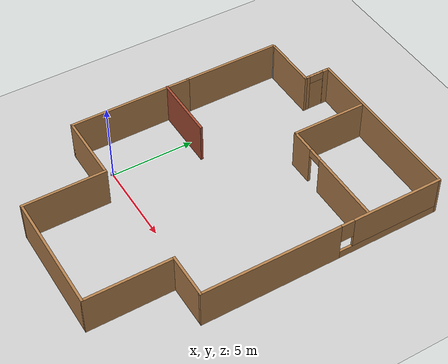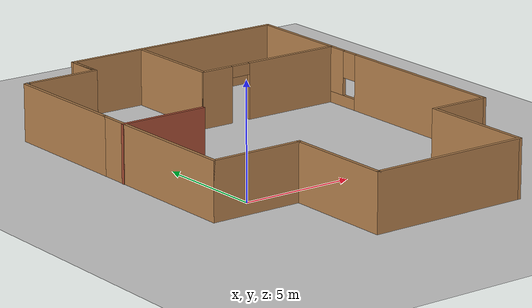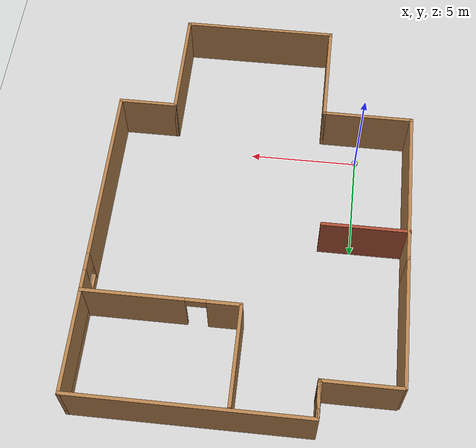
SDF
<sdf version="1.7">
 <world name="lidar_test_world">
  <model name="ground_plane">
   <static>1</static>
   <link name="link">
    <collision name="collision">
     <geometry><plane><normal>0 0 1</normal><size>100 100</size></plane></geometry>
     <surface>
      <contact><collide_bitmask>65535</collide_bitmask></contact>
      <friction><ode><mu>100</mu><mu2>50</mu2></ode></friction>
     </surface>
    </collision>
    <visual name="visual">
     <cast_shadows>0</cast_shadows>
     <geometry><plane><normal>0 0 1</normal><size>100 100</size></plane></geometry>
     <material>
      <script><uri>file://media/materials/scripts/gazebo.material</uri><name>Gazebo/Grey</name></script>
     </material>
    </visual>
   </link>
  </model>
  <light name="sun" type="directional">
   <pose>0 0 10 0 -0 0</pose>
   <diffuse>0.8 0.8 0.8 1</diffuse>
   <specular>0.2 0.2 0.2 1</specular>
   <attenuation>
    <range>1000</range>
    <constant>0.9</constant>
    <linear>0.01</linear>
    <quadratic>0.001</quadratic>
   </attenuation>
   <direction>-0.5 0.1 -0.9</direction>
   <spot><inner_angle>0</inner_angle><outer_angle>0</outer_angle><falloff>0</falloff></spot>
  </light>
  <gravity>0 0 -9.8</gravity>
  <magnetic_field>6e-06 2.3e-05 -4.2e-05</magnetic_field>
  <atmosphere type="adiabatic"/>
  <physics type="ode">
   <max_step_size>0.001</max_step_size>
   <real_time_factor>1</real_time_factor>
   <real_time_update_rate>1000</real_time_update_rate>
  </physics>
  <scene><ambient>0.4 0.4 0.4 1</ambient><background>0.7 0.7 0.7 1</background><shadows>1</shadows></scene>
  <audio><device>default</device></audio>
  <spherical_coordinates>
   <surface_model>EARTH_WGS84</surface_model>
   <latitude_deg>0</latitude_deg>
   <longitude_deg>0</longitude_deg>
   <elevation>0</elevation>
   <heading_deg>0</heading_deg>
  </spherical_coordinates>
  <model name="amr">
   <link name="base_footprint">
    <inertial>
     <pose>0.003077 0 0.002923 0 -0 0</pose>
     <mass>6.5</mass>
     <inertia>
      <ixx>0.0326982</ixx>
      <ixy>0.001</ixy>
      <ixz>0.00105846</ixz>
      <iyy>0.0346367</iyy>
      <iyz>0.001</iyz>
      <izz>0.0531385</izz>
     </inertia>
    </inertial>
    <collision name="base_footprint_fixed_joint_lump__base_link_collision">
     <pose>0 0 0.03 0 -0 0</pose>
     <geometry><cylinder><length>0.075</length><radius>0.15</radius></cylinder></geometry>
    </collision>
    <collision name="base_footprint_fixed_joint_lump__caster_wheel_collision_1">
     <pose>0.1 0 0 0 -0 0</pose>
     <geometry><sphere><radius>0.04</radius></sphere></geometry>
    </collision>
    <collision name="base_footprint_fixed_joint_lump__lidar_link_collision_2">
     <pose>0 0 0.0875 0 -0 0</pose>
     <geometry><cylinder><length>0.04</length><radius>0.02</radius></cylinder></geometry>
    </collision>
    <visual name="base_footprint_fixed_joint_lump__base_link_visual">
     <pose>0 0 0.03 0 -0 0</pose>
     <geometry><cylinder><length>0.075</length><radius>0.15</radius></cylinder></geometry>
    </visual>
    <visual name="base_footprint_fixed_joint_lump__caster_wheel_visual_1">
     <pose>0.1 0 0 0 -0 0</pose>
     <geometry><sphere><radius>0.04</radius></sphere></geometry>
    </visual>
    <visual name="base_footprint_fixed_joint_lump__imu_link_visual_2">
     <pose>0 0 0.015 0 -0 0</pose>
     <geometry><box><size>0.04 0.04 0.02</size></box></geometry>
    </visual>
    <visual name="base_footprint_fixed_joint_lump__lidar_link_visual_3">
     <pose>0 0 0.0875 0 -0 0</pose>
     <geometry><cylinder><length>0.04</length><radius>0.02</radius></cylinder></geometry>
     <material>
      <script><name>Gazebo/Blue</name><uri>file://media/materials/scripts/gazebo.material</uri></script>
     </material>
    </visual>
    <sensor name="imu_sensor" type="imu">
     <always_on>1</always_on>
     <update_rate>50</update_rate>
     <visualize>1</visualize>
     <plugin name="imu_plugin" filename="libgazebo_ros_imu_sensor.so">
      <ros><namespace>/</namespace><remapping>~/out:=imu</remapping></ros>
      <frame_name>imu_link</frame_name>
     </plugin>
     <pose>0 0 0.015 0 -0 0</pose>
    </sensor>
    <sensor name="laser" type="ray">
     <visualize>1</visualize>
     <update_rate>10</update_rate>
     <ray>
      <scan>
       <horizontal>
        <samples>360</samples>
        <resolution>1</resolution>
        <min_angle>-3.14</min_angle>
        <max_angle>3.14</max_angle>
       </horizontal>
       <vertical><samples>1</samples><min_angle>0</min_angle><max_angle>0</max_angle></vertical>
      </scan>
      <range><min>0.3</min><max>12</max><resolution>0.01</resolution></range>
     </ray>
     <plugin name="lidar_plugin" filename="libgazebo_ros_ray_sensor.so">
      <ros><remapping>~/out:=scan</remapping></ros>
      <output_type>sensor_msgs/LaserScan</output_type>
      <frame_name>lidar_link</frame_name>
     </plugin>
     <pose>0 0 0.0875 0 -0 0</pose>
    </sensor>
   </link>
   <joint name="left_wheel_joint" type="revolute">
    <pose relative_to="base_footprint">0 0.15 0 0 -0 0</pose>
    <parent>base_footprint</parent>
    <child>left_wheel</child>
    <axis>
     <xyz>0 1 0</xyz>
     <limit><lower>-1e+16</lower><upper>1e+16</upper></limit>
     <dynamics><spring_reference>0</spring_reference><spring_stiffness>0</spring_stiffness></dynamics>
    </axis>
   </joint>
   <link name="left_wheel">
    <pose relative_to="left_wheel_joint">0 0 0 0 -0 0</pose>
    <inertial>
     <mass>0.5</mass>
     <inertia><ixx>0.001</ixx><ixy>0</ixy><ixz>0</ixz><iyy>0.001</iyy><iyz>0</iyz><izz>0.001</izz></inertia>
    </inertial>
    <collision name="left_wheel_collision">
     <pose>0 0 0 1.5708 -0 0</pose>
     <geometry><cylinder><length>0.04</length><radius>0.04</radius></cylinder></geometry>
     <surface><friction><ode><mu>2</mu><mu2>2</mu2></ode></friction></surface>
    </collision>
    <visual name="left_wheel_visual">
     <pose>0 0 0 1.5708 -0 0</pose>
     <geometry><cylinder><length>0.04</length><radius>0.04</radius></cylinder></geometry>
    </visual>
   </link>
   <joint name="right_wheel_joint" type="revolute">
    <pose relative_to="base_footprint">0 -0.15 0 0 -0 0</pose>
    <parent>base_footprint</parent>
    <child>right_wheel</child>
    <axis>
     <xyz>0 1 0</xyz>
     <limit><lower>-1e+16</lower><upper>1e+16</upper></limit>
     <dynamics><spring_reference>0</spring_reference><spring_stiffness>0</spring_stiffness></dynamics>
    </axis>
   </joint>
   <link name="right_wheel">
    <pose relative_to="right_wheel_joint">0 0 0 0 -0 0</pose>
    <inertial>
     <mass>0.5</mass>
     <inertia><ixx>0.001</ixx><ixy>0</ixy><ixz>0</ixz><iyy>0.001</iyy><iyz>0</iyz><izz>0.001</izz></inertia>
    </inertial>
    <collision name="right_wheel_collision">
     <pose>0 0 0 1.5708 -0 0</pose>
     <geometry><cylinder><length>0.04</length><radius>0.04</radius></cylinder></geometry>
     <surface><friction><ode><mu>2</mu><mu2>2</mu2></ode></friction></surface>
    </collision>
    <visual name="right_wheel_visual">
     <pose>0 0 0 1.5708 -0 0</pose>
     <geometry><cylinder><length>0.04</length><radius>0.04</radius></cylinder></geometry>
    </visual>
   </link>
   <static>0</static>
   <plugin name="gazebo_ros2_control" filename="libgazebo_ros2_control.so">
    <parameters>/home/akshat/amr_ws/src/amr_description/config/controllers.yaml</parameters>
   </plugin>
   <pose>0 0 0.1 0 -0 0</pose>
  </model>
  <model name="Walls">
   <pose>4.49878 3.86295 0 0 -0 0</pose>
   <link name="Wall_0">
    <collision name="Wall_0_Collision">
     <geometry><box><size>7.5 0.15 2.5</size></box></geometry>
     <pose>0 0 1.25 0 -0 0</pose>
    </collision>
    <visual name="Wall_0_Visual">
     <pose>0 0 1.25 0 -0 0</pose>
     <geometry><box><size>7.5 0.15 2.5</size></box></geometry>
     <material>
      <script><uri>file://media/materials/scripts/gazebo.material</uri><name>Gazebo/Wood</name></script>
      <ambient>1 1 1 1</ambient>
     </material>
     <meta><layer>0</layer></meta>
    </visual>
    <pose>-6.9 -1.325 0 0 -0 -1.5708</pose>
   </link>
   <link name="Wall_10">
    <collision name="Wall_10_Collision">
     <geometry><box><size>7.25 0.15 2.5</size></box></geometry>
     <pose>0 0 1.25 0 -0 0</pose>
    </collision>
    <visual name="Wall_10_Visual">
     <pose>0 0 1.25 0 -0 0</pose>
     <geometry><box><size>7.25 0.15 2.5</size></box></geometry>
     <material>
      <script><uri>file://media/materials/scripts/gazebo.material</uri><name>Gazebo/Wood</name></script>
      <ambient>1 1 1 1</ambient>
     </material>
     <meta><layer>0</layer></meta>
    </visual>
    <pose>0.75 -9.85 0 0 -0 0</pose>
   </link>
   <link name="Wall_12">
    <collision name="Wall_12_Collision">
     <geometry><box><size>5.25 0.15 2.5</size></box></geometry>
     <pose>0 0 1.25 0 -0 0</pose>
    </collision>
    <visual name="Wall_12_Visual">
     <pose>0 0 1.25 0 -0 0</pose>
     <geometry><box><size>5.25 0.15 2.5</size></box></geometry>
     <material>
      <script><uri>file://media/materials/scripts/gazebo.material</uri><name>Gazebo/Wood</name></script>
      <ambient>1 1 1 1</ambient>
     </material>
     <meta><layer>0</layer></meta>
    </visual>
    <pose>4.3 -7.3 0 0 -0 1.5708</pose>
   </link>
   <link name="Wall_13">
    <collision name="Wall_13_Collision">
     <geometry><box><size>2.75 0.15 2.5</size></box></geometry>
     <pose>0 0 1.25 0 -0 0</pose>
    </collision>
    <visual name="Wall_13_Visual">
     <pose>0 0 1.25 0 -0 0</pose>
     <geometry><box><size>2.75 0.15 2.5</size></box></geometry>
     <material>
      <script><uri>file://media/materials/scripts/gazebo.material</uri><name>Gazebo/Wood</name></script>
      <ambient>1 1 1 1</ambient>
     </material>
     <meta><layer>0</layer></meta>
    </visual>
    <pose>5.6 -4.75 0 0 -0 0</pose>
   </link>
   <link name="Wall_14">
    <pose>6.9 2.55 0 0 -0 1.5708</pose>
    <visual name="Wall_14_Visual_0">
     <pose>-3.18793 0 1.25 0 -0 0</pose>
     <geometry><box><size>8.37415 0.15 2.5</size></box></geometry>
     <material>
      <script><uri>file://media/materials/scripts/gazebo.material</uri><name>Gazebo/Wood</name></script>
      <ambient>1 1 1 1</ambient>
     </material>
     <meta><layer>0</layer></meta>
    </visual>
    <collision name="Wall_14_Collision_0">
     <geometry><box><size>8.37415 0.15 2.5</size></box></geometry>
     <pose>-3.18793 0 1.25 0 -0 0</pose>
    </collision>
    <visual name="Wall_14_Visual_1">
     <pose>4.18707 0 0.25 0 -0 0</pose>
     <geometry><box><size>6.37585 0.15 0.5</size></box></geometry>
     <material>
      <script><uri>file://media/materials/scripts/gazebo.material</uri><name>Gazebo/Wood</name></script>
      <ambient>1 1 1 1</ambient>
     </material>
     <meta><layer>0</layer></meta>
    </visual>
    <collision name="Wall_14_Collision_1">
     <geometry><box><size>6.37585 0.15 0.5</size></box></geometry>
     <pose>4.18707 0 0.25 0 -0 0</pose>
    </collision>
    <visual name="Wall_14_Visual_2">
     <pose>4.58707 0 1.5 0 -0 0</pose>
     <geometry><box><size>5.57585 0.15 2</size></box></geometry>
     <material>
      <script><uri>file://media/materials/scripts/gazebo.material</uri><name>Gazebo/Wood</name></script>
      <ambient>1 1 1 1</ambient>
     </material>
     <meta><layer>0</layer></meta>
    </visual>
    <collision name="Wall_14_Collision_2">
     <geometry><box><size>5.57585 0.15 2</size></box></geometry>
     <pose>4.58707 0 1.5 0 -0 0</pose>
    </collision>
    <visual name="Wall_14_Visual_3">
     <pose>1.39915 0 1.9 0 -0 0</pose>
     <geometry><box><size>0.8 0.15 1.2</size></box></geometry>
     <material>
      <script><uri>file://media/materials/scripts/gazebo.material</uri><name>Gazebo/Wood</name></script>
      <ambient>1 1 1 1</ambient>
     </material>
     <meta><layer>0</layer></meta>
    </visual>
    <collision name="Wall_14_Collision_3">
     <geometry><box><size>0.8 0.15 1.2</size></box></geometry>
     <pose>1.39915 0 1.9 0 -0 0</pose>
    </collision>
   </link>
   <link name="Wall_15">
    <collision name="Wall_15_Collision">
     <geometry><box><size>10.5 0.15 2.5</size></box></geometry>
     <pose>0 0 1.25 0 -0 0</pose>
    </collision>
    <visual name="Wall_15_Visual">
     <pose>0 0 1.25 0 -0 0</pose>
     <geometry><box><size>10.5 0.15 2.5</size></box></geometry>
     <material>
      <script><uri>file://media/materials/scripts/gazebo.material</uri><name>Gazebo/Wood</name></script>
      <ambient>1 1 1 1</ambient>
     </material>
     <meta><layer>0</layer></meta>
    </visual>
    <pose>1.725 9.85 0 0 -0 3.14159</pose>
   </link>
   <link name="Wall_16">
    <pose>-3.45 9.05 0 0 -0 -1.5708</pose>
    <visual name="Wall_16_Visual_0">
     <pose>-0.623949 0 1.25 0 -0 0</pose>
     <geometry><box><size>0.502102 0.15 2.5</size></box></geometry>
     <material>
      <script><uri>file://media/materials/scripts/gazebo.material</uri><name>Gazebo/Wood</name></script>
      <ambient>1 1 1 1</ambient>
     </material>
     <meta><layer>0</layer></meta>
    </visual>
    <collision name="Wall_16_Collision_0">
     <geometry><box><size>0.502102 0.15 2.5</size></box></geometry>
     <pose>-0.623949 0 1.25 0 -0 0</pose>
    </collision>
    <visual name="Wall_16_Visual_1">
     <pose>0.701051 0 1.25 0 -0 0</pose>
     <geometry><box><size>0.347898 0.15 2.5</size></box></geometry>
     <material>
      <script><uri>file://media/materials/scripts/gazebo.material</uri><name>Gazebo/Wood</name></script>
      <ambient>1 1 1 1</ambient>
     </material>
     <meta><layer>0</layer></meta>
    </visual>
    <collision name="Wall_16_Collision_1">
     <geometry><box><size>0.347898 0.15 2.5</size></box></geometry>
     <pose>0.701051 0 1.25 0 -0 0</pose>
    </collision>
    <visual name="Wall_16_Visual_2">
     <pose>0.077102 0 2.25 0 -0 0</pose>
     <geometry><box><size>0.9 0.15 0.5</size></box></geometry>
     <material>
      <script><uri>file://media/materials/scripts/gazebo.material</uri><name>Gazebo/Wood</name></script>
      <ambient>1 1 1 1</ambient>
     </material>
     <meta><layer>0</layer></meta>
    </visual>
    <collision name="Wall_16_Collision_2">
     <geometry><box><size>0.9 0.15 0.5</size></box></geometry>
     <pose>0.077102 0 2.25 0 -0 0</pose>
    </collision>
   </link>
   <link name="Wall_17">
    <collision name="Wall_17_Collision">
     <geometry><box><size>3.5 0.15 2.5</size></box></geometry>
     <pose>0 0 1.25 0 -0 0</pose>
    </collision>
    <visual name="Wall_17_Visual">
     <pose>0 0 1.25 0 -0 0</pose>
     <geometry><box><size>3.5 0.15 2.5</size></box></geometry>
     <material>
      <script><uri>file://media/materials/scripts/gazebo.material</uri><name>Gazebo/Wood</name></script>
      <ambient>1 1 1 1</ambient>
     </material>
     <meta><layer>0</layer></meta>
    </visual>
    <pose>-5.125 8.25 0 0 -0 3.14159</pose>
   </link>
   <link name="Wall_18">
    <collision name="Wall_18_Collision">
     <geometry><box><size>0.15 0.15 2.5</size></box></geometry>
     <pose>0 0 1.25 0 -0 0</pose>
    </collision>
    <visual name="Wall_18_Visual">
     <pose>0 0 1.25 0 -0 0</pose>
     <geometry><box><size>0.15 0.15 2.5</size></box></geometry>
     <material>
      <script><uri>file://media/materials/scripts/gazebo.material</uri><name>Gazebo/Grey</name></script>
      <ambient>1 1 1 1</ambient>
     </material>
     <meta><layer>0</layer></meta>
    </visual>
    <pose>-6.8 8.25 0 0 -0 0</pose>
   </link>
   <link name="Wall_21">
    <collision name="Wall_21_Collision">
     <geometry><box><size>6 0.15 2.5</size></box></geometry>
     <pose>0 0 1.25 0 -0 0</pose>
    </collision>
    <visual name="Wall_21_Visual">
     <pose>0 0 1.25 0 -0 0</pose>
     <geometry><box><size>6 0.15 2.5</size></box></geometry>
     <material>
      <script><uri>file://media/materials/scripts/gazebo.material</uri><name>Gazebo/Wood</name></script>
      <ambient>1 1 1 1</ambient>
     </material>
     <meta><layer>0</layer></meta>
    </visual>
    <pose>-6.9 5.275 0 0 -0 1.5708</pose>
   </link>
   <link name="Wall_8">
    <collision name="Wall_8_Collision">
     <geometry><box><size>4.25 0.15 2.5</size></box></geometry>
     <pose>0 0 1.25 0 -0 0</pose>
    </collision>
    <visual name="Wall_8_Visual">
     <pose>0 0 1.25 0 -0 0</pose>
     <geometry><box><size>4.25 0.15 2.5</size></box></geometry>
     <material>
      <script><uri>file://media/materials/scripts/gazebo.material</uri><name>Gazebo/Wood</name></script>
      <ambient>0.760784 0.662745 0.627451 1</ambient>
     </material>
     <meta><layer>0</layer></meta>
    </visual>
    <pose>-4.85 -5 0 0 -0 0</pose>
   </link>
   <link name="Wall_9">
    <collision name="Wall_9_Collision">
     <geometry><box><size>5 0.15 2.5</size></box></geometry>
     <pose>0 0 1.25 0 -0 0</pose>
    </collision>
    <visual name="Wall_9_Visual">
     <pose>0 0 1.25 0 -0 0</pose>
     <geometry><box><size>5 0.15 2.5</size></box></geometry>
     <material>
      <script><uri>file://media/materials/scripts/gazebo.material</uri><name>Gazebo/Wood</name></script>
      <ambient>1 1 1 1</ambient>
     </material>
     <meta><layer>0</layer></meta>
    </visual>
    <pose>-2.8 -7.425 0 0 -0 -1.5708</pose>
   </link>
   <static>1</static>
  </model>
  <model name="Untitled">
   <pose>5.73501 6.80809 0 0 -0 0</pose>
   <link name="Wall_0">
    <pose>2.23552 2.33374 0 0 -0 3.14159</pose>
    <visual name="Wall_0_Visual_0">
     <pose>-1.22622 0 1.25 0 -0 0</pose>
     <geometry><box><size>4.54657 0.16 2.5</size></box></geometry>
     <material>
      <script><uri>file://media/materials/scripts/gazebo.material</uri><name>Gazebo/Wood</name></script>
      <ambient>0.760784 0.662745 0.627451 1</ambient>
     </material>
     <meta><layer>0</layer></meta>
    </visual>
    <collision name="Wall_0_Collision_0">
     <geometry><box><size>4.54657 0.16 2.5</size></box></geometry>
     <pose>-1.22622 0 1.25 0 -0 0</pose>
    </collision>
    <visual name="Wall_0_Visual_1">
     <pose>2.72328 0 1.25 0 -0 0</pose>
     <geometry><box><size>1.55243 0.16 2.5</size></box></geometry>
     <material>
      <script><uri>file://media/materials/scripts/gazebo.material</uri><name>Gazebo/Wood</name></script>
      <ambient>0.760784 0.662745 0.627451 1</ambient>
     </material>
     <meta><layer>0</layer></meta>
    </visual>
    <collision name="Wall_0_Collision_1">
     <geometry><box><size>1.55243 0.16 2.5</size></box></geometry>
     <pose>2.72328 0 1.25 0 -0 0</pose>
    </collision>
    <visual name="Wall_0_Visual_2">
     <pose>1.49707 0 2.25 0 -0 0</pose>
     <geometry><box><size>0.9 0.16 0.5</size></box></geometry>
     <material>
      <script><uri>file://media/materials/scripts/gazebo.material</uri><name>Gazebo/Wood</name></script>
      <ambient>0.760784 0.662745 0.627451 1</ambient>
     </material>
     <meta><layer>0</layer></meta>
    </visual>
    <collision name="Wall_0_Collision_2">
     <geometry><box><size>0.9 0.16 0.5</size></box></geometry>
     <pose>1.49707 0 2.25 0 -0 0</pose>
    </collision>
   </link>
   <link name="Wall_4">
    <collision name="Wall_4_Collision">
     <geometry><box><size>4.5 0.15 2.5</size></box></geometry>
     <pose>0 0 1.25 0 -0 0</pose>
    </collision>
    <visual name="Wall_4_Visual">
     <pose>0 0 1.25 0 -0 0</pose>
     <geometry><box><size>4.5 0.15 2.5</size></box></geometry>
     <material>
      <script><uri>file://media/materials/scripts/gazebo.material</uri><name>Gazebo/Wood</name></script>
      <ambient>1 1 1 1</ambient>
     </material>
     <meta><layer>0</layer></meta>
    </visual>
    <pose>-1.19875 4.55809 0 0 -0 1.5708</pose>
   </link>
   <static>1</static>
  </model>
  <model name="Untitled_0">
   <pose>0.555887 6.81696 0 0 -0 0</pose>
   <link name="Wall_2">
    <collision name="Wall_2_Collision">
     <geometry><box><size>1.5 0.15 2.5</size></box></geometry>
     <pose>0 0 1.25 0 -0 0</pose>
    </collision>
    <visual name="Wall_2_Visual">
     <pose>0 0 1.25 0 -0 0</pose>
     <geometry><box><size>1.5 0.15 2.5</size></box></geometry>
     <material>
      <script><uri>file://media/materials/scripts/gazebo.material</uri><name>Gazebo/Wood</name></script>
      <ambient>1 1 1 1</ambient>
     </material>
     <meta><layer>0</layer></meta>
    </visual>
    <pose>0.480887 6.06696 0 0 -0 1.5708</pose>
   </link>
   <static>1</static>
  </model>
  <model name="Untitled_1">
   <pose>-0.504074 2.48213 0 0 -0 0</pose>
   <link name="Wall_4">
    <collision name="Wall_4_Collision">
     <geometry><box><size>4 0.15 2.5</size></box></geometry>
     <pose>0 0 1.25 0 -0 0</pose>
    </collision>
    <visual name="Wall_4_Visual">
     <pose>0 0 1.25 0 -0 0</pose>
     <geometry><box><size>4 0.15 2.5</size></box></geometry>
     <material>
      <script><uri>file://media/materials/scripts/gazebo.material</uri><name>Gazebo/Bricks</name></script>
      <ambient>1 1 1 1</ambient>
     </material>
     <meta><layer>0</layer></meta>
    </visual>
    <pose>0 2.40713 0 0 -0 3.14159</pose>
   </link>
   <static>1</static>
  </model>
 </world>
</sdf>
